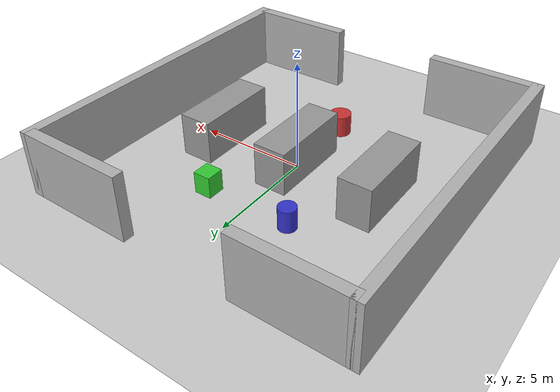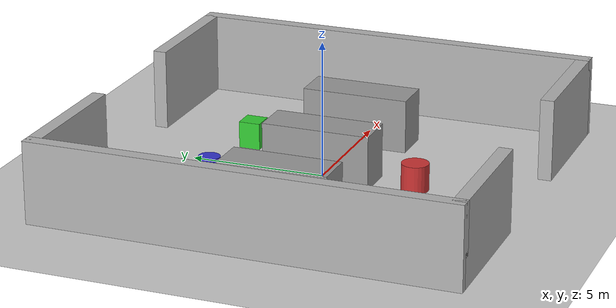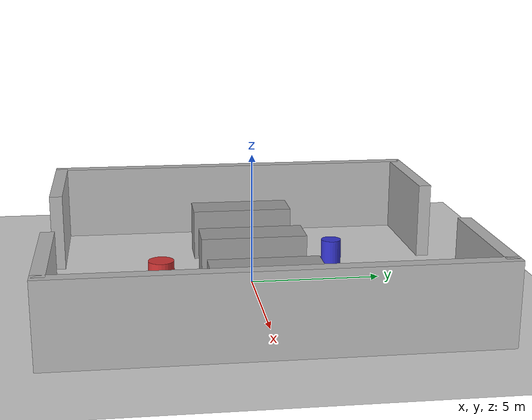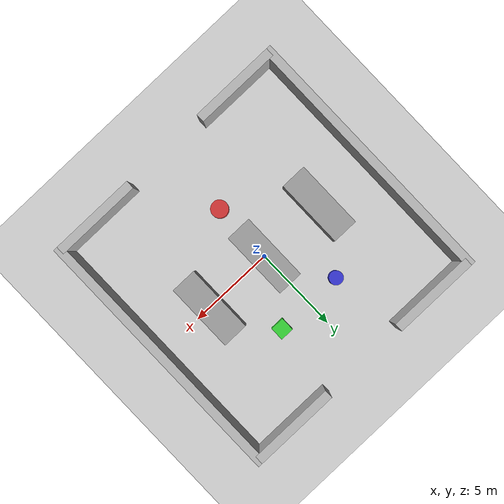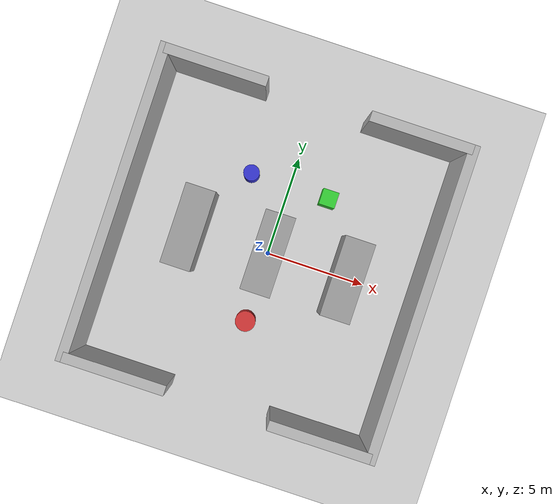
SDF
<?xml version="1.0" ?>
<sdf version="1.7">
  <world name="supermarket_world">
    <plugin
      filename="gz-sim-physics-system"
      name="gz::sim::systems::Physics">
    </plugin>
    <plugin
      filename="gz-sim-user-commands-system"
      name="gz::sim::systems::UserCommands">
    </plugin>
    <plugin
      filename="gz-sim-scene-broadcaster-system"
      name="gz::sim::systems::SceneBroadcaster">
    </plugin>

    <!-- Physical and Lighting Settings -->
    <include>
      <uri>https://fuel.gazebosim.org/1.0/OpenRobotics/models/Sun</uri>
    </include>
    <include>
      <uri>https://fuel.gazebosim.org/1.0/OpenRobotics/models/Ground Plane</uri>
    </include>

    <!-- Outer Walls (15m x 15m) with 2 large gaps (Entrances) -->
    <!-- Front Wall (with Entrance 1) -->
    <model name="wall_front_left">
      <static>true</static>
      <pose>-5 -7.5 1.5 0 0 0</pose>
      <link name="link">
        <collision name="col"><geometry><box><size>5 0.5 3</size></box></geometry></collision>
        <visual name="vis"><geometry><box><size>5 0.5 3</size></box></geometry><material><ambient>0.7 0.7 0.7 1</ambient><diffuse>0.7 0.7 0.7 1</diffuse></material></visual>
      </link>
    </model>
    <model name="wall_front_right">
      <static>true</static>
      <pose>5 -7.5 1.5 0 0 0</pose>
      <link name="link">
        <collision name="col"><geometry><box><size>5 0.5 3</size></box></geometry></collision>
        <visual name="vis"><geometry><box><size>5 0.5 3</size></box></geometry><material><ambient>0.7 0.7 0.7 1</ambient><diffuse>0.7 0.7 0.7 1</diffuse></material></visual>
      </link>
    </model>
    <!-- Back Wall (with Entrance 2) -->
    <model name="wall_back_left">
      <static>true</static>
      <pose>-5 7.5 1.5 0 0 0</pose>
      <link name="link">
        <collision name="col"><geometry><box><size>5 0.5 3</size></box></geometry></collision>
        <visual name="vis"><geometry><box><size>5 0.5 3</size></box></geometry><material><ambient>0.7 0.7 0.7 1</ambient><diffuse>0.7 0.7 0.7 1</diffuse></material></visual>
      </link>
    </model>
    <model name="wall_back_right">
      <static>true</static>
      <pose>5 7.5 1.5 0 0 0</pose>
      <link name="link">
        <collision name="col"><geometry><box><size>5 0.5 3</size></box></geometry></collision>
        <visual name="vis"><geometry><box><size>5 0.5 3</size></box></geometry><material><ambient>0.7 0.7 0.7 1</ambient><diffuse>0.7 0.7 0.7 1</diffuse></material></visual>
      </link>
    </model>
    <!-- Side Walls -->
    <model name="wall_left">
      <static>true</static>
      <pose>-7.5 0 1.5 0 0 1.570796</pose>
      <link name="link">
        <collision name="col"><geometry><box><size>15.5 0.5 3</size></box></geometry></collision>
        <visual name="vis"><geometry><box><size>15.5 0.5 3</size></box></geometry><material><ambient>0.7 0.7 0.7 1</ambient><diffuse>0.7 0.7 0.7 1</diffuse></material></visual>
      </link>
    </model>
    <model name="wall_right">
      <static>true</static>
      <pose>7.5 0 1.5 0 0 1.570796</pose>
      <link name="link">
        <collision name="col"><geometry><box><size>15.5 0.5 3</size></box></geometry></collision>
        <visual name="vis"><geometry><box><size>15.5 0.5 3</size></box></geometry><material><ambient>0.7 0.7 0.7 1</ambient><diffuse>0.7 0.7 0.7 1</diffuse></material></visual>
      </link>
    </model>

    <!-- 3 Racks (Boxes) -->
    <model name="rack_1">
      <static>true</static>
      <pose>-4 0 1 0 0 0</pose>
      <link name="link">
        <collision name="col"><geometry><box><size>1.5 4 2</size></box></geometry></collision>
        <visual name="vis"><geometry><box><size>1.5 4 2</size></box></geometry><material><ambient>0.6 0.6 0.6 1</ambient><diffuse>0.6 0.6 0.6 1</diffuse></material></visual>
      </link>
    </model>
    <model name="rack_2">
      <static>true</static>
      <pose>0 0 1 0 0 0</pose>
      <link name="link">
        <collision name="col"><geometry><box><size>1.5 4 2</size></box></geometry></collision>
        <visual name="vis"><geometry><box><size>1.5 4 2</size></box></geometry><material><ambient>0.6 0.6 0.6 1</ambient><diffuse>0.6 0.6 0.6 1</diffuse></material></visual>
      </link>
    </model>
    <model name="rack_3">
      <static>true</static>
      <pose>4 0 1 0 0 0</pose>
      <link name="link">
        <collision name="col"><geometry><box><size>1.5 4 2</size></box></geometry></collision>
        <visual name="vis"><geometry><box><size>1.5 4 2</size></box></geometry><material><ambient>0.6 0.6 0.6 1</ambient><diffuse>0.6 0.6 0.6 1</diffuse></material></visual>
      </link>
    </model>

    <!-- 3 Obstacles -->
    <model name="obs_1">
      <static>true</static>
      <pose>-2 3.5 0.5 0 0 0</pose>
      <link name="link">
        <collision name="col"><geometry><cylinder><radius>0.4</radius><length>1</length></cylinder></geometry></collision>
        <visual name="vis"><geometry><cylinder><radius>0.4</radius><length>1</length></cylinder></geometry><material><ambient>0.2 0.2 0.8 1</ambient><diffuse>0.2 0.2 0.8 1</diffuse></material></visual>
      </link>
    </model>
    <model name="obs_2">
      <static>true</static>
      <pose>2 3.5 0.5 0 0 0</pose>
      <link name="link">
        <collision name="col"><geometry><box><size>0.8 0.8 1</size></box></geometry></collision>
        <visual name="vis"><geometry><box><size>0.8 0.8 1</size></box></geometry><material><ambient>0.2 0.8 0.2 1</ambient><diffuse>0.2 0.8 0.2 1</diffuse></material></visual>
      </link>
    </model>
    <model name="obs_3">
      <static>true</static>
      <pose>0 -3.5 0.5 0 0 0</pose>
      <link name="link">
        <collision name="col"><geometry><cylinder><radius>0.5</radius><length>1</length></cylinder></geometry></collision>
        <visual name="vis"><geometry><cylinder><radius>0.5</radius><length>1</length></cylinder></geometry><material><ambient>0.8 0.2 0.2 1</ambient><diffuse>0.8 0.2 0.2 1</diffuse></material></visual>
      </link>
    </model>

  </world>
</sdf>
